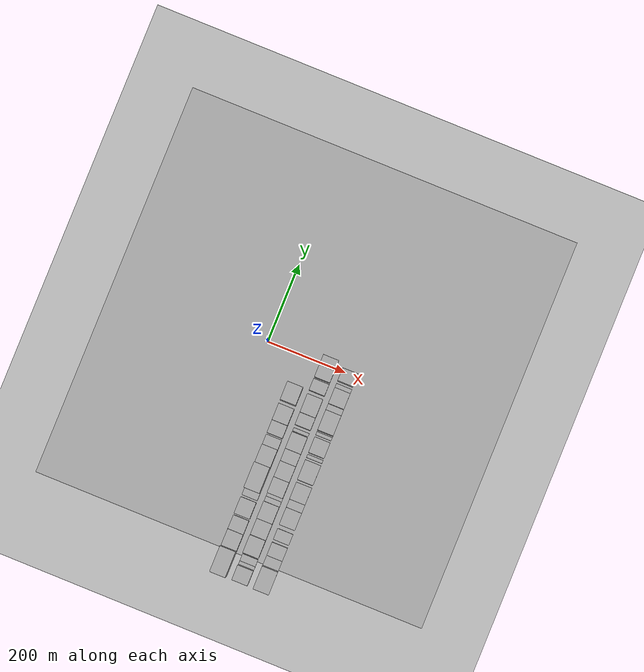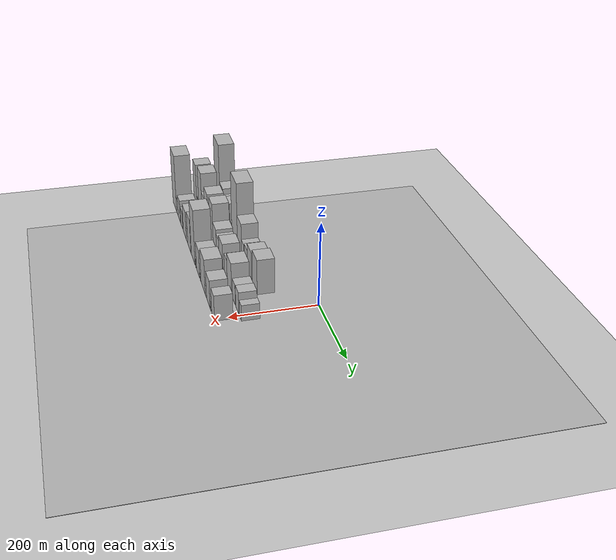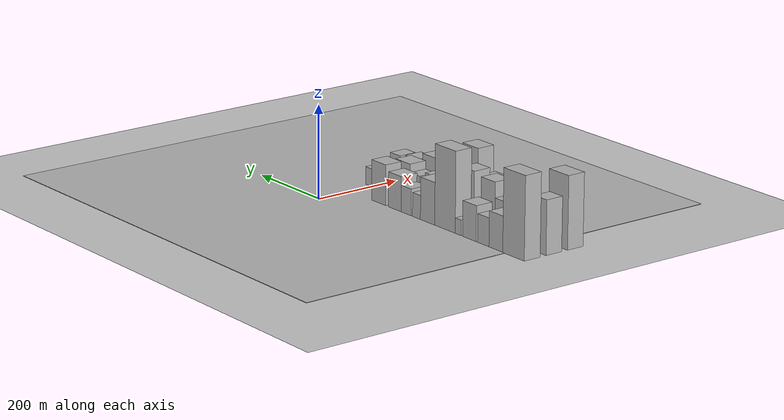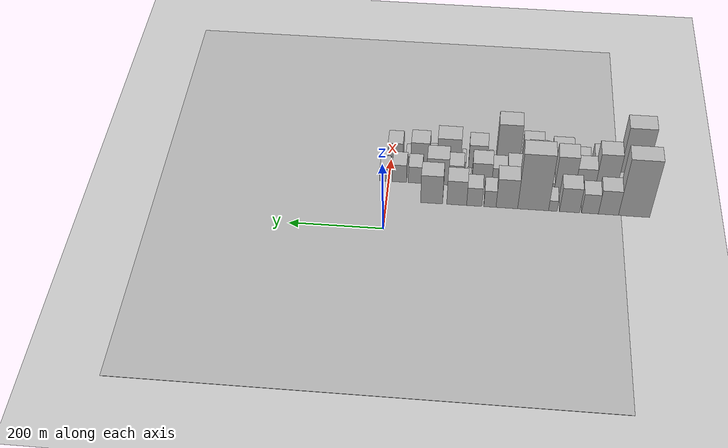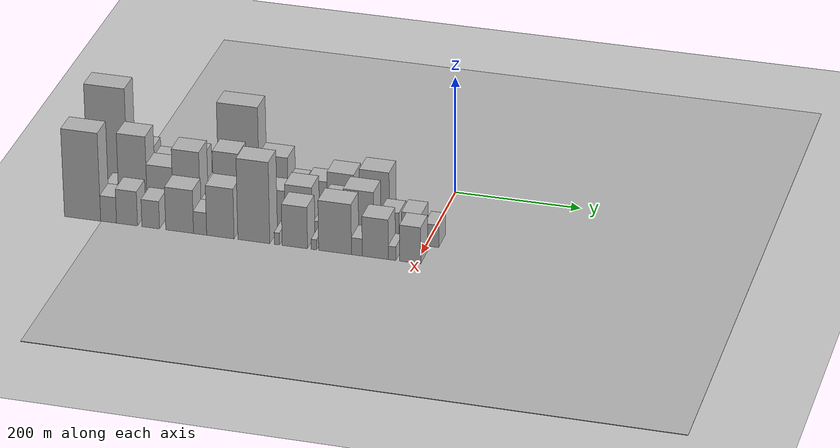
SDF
<sdf version="1.6">
 <world name="default">
  <include><name>ground_plane_1</name><uri>model://HANNAS_ground_plane</uri></include>
  <include>
   <name>ground_plane_2</name>
   <uri>model://HANNAS_ground_plane</uri>
   <pose>100 0 0  0 0 0</pose>
  </include>
  <model name="building_1">
   <static>1</static>
   <pose>100.0000 -527.1341 0 0.000000 0.000000 0.000000</pose>
   <link name="link">
    <pose>0 0 87.00 0 0 0</pose>
    <collision name="collision"><geometry><box><size>40.0000 65.7318 174.0000</size></box></geometry></collision>
    <visual name="visual">
     <cast_shadows>0</cast_shadows>
     <geometry><box><size>40.0000 65.7318 174.0000</size></box></geometry>
     <material>
      <script>
       <uri>model://HANNAS_wall/materials/scripts</uri>
       <uri>model://HANNAS_wall/materials/textures</uri>
       <name>vrc/HANNAS_wall</name>
      </script>
     </material>
    </visual>
   </link>
  </model>
  <model name="building_2">
   <static>1</static>
   <pose>100.0000 -473.0993 0 0.000000 0.000000 0.000000</pose>
   <link name="link">
    <pose>0 0 37.50 0 0 0</pose>
    <collision name="collision"><geometry><box><size>40.0000 42.3379 75.0000</size></box></geometry></collision>
    <visual name="visual">
     <cast_shadows>0</cast_shadows>
     <geometry><box><size>40.0000 42.3379 75.0000</size></box></geometry>
     <material>
      <script>
       <uri>model://HANNAS_wall/materials/scripts</uri>
       <uri>model://HANNAS_wall/materials/textures</uri>
       <name>vrc/HANNAS_wall</name>
      </script>
     </material>
    </visual>
   </link>
  </model>
  <model name="building_3">
   <static>1</static>
   <pose>100.0000 -434.0599 0 0.000000 0.000000 0.000000</pose>
   <link name="link">
    <pose>0 0 30.00 0 0 0</pose>
    <collision name="collision"><geometry><box><size>40.0000 35.7409 60.0000</size></box></geometry></collision>
    <visual name="visual">
     <cast_shadows>0</cast_shadows>
     <geometry><box><size>40.0000 35.7409 60.0000</size></box></geometry>
     <material>
      <script>
       <uri>model://HANNAS_wall/materials/scripts</uri>
       <uri>model://HANNAS_wall/materials/textures</uri>
       <name>vrc/HANNAS_wall</name>
      </script>
     </material>
    </visual>
   </link>
  </model>
  <model name="building_4">
   <static>1</static>
   <pose>100.0000 -390.8342 0 0.000000 0.000000 0.000000</pose>
   <link name="link">
    <pose>0 0 37.50 0 0 0</pose>
    <collision name="collision"><geometry><box><size>40.0000 42.7106 75.0000</size></box></geometry></collision>
    <visual name="visual">
     <cast_shadows>0</cast_shadows>
     <geometry><box><size>40.0000 42.7106 75.0000</size></box></geometry>
     <material>
      <script>
       <uri>model://HANNAS_wall/materials/scripts</uri>
       <uri>model://HANNAS_wall/materials/textures</uri>
       <name>vrc/HANNAS_wall</name>
      </script>
     </material>
    </visual>
   </link>
  </model>
  <model name="building_5">
   <static>1</static>
   <pose>100.0000 -355.3467 0 0.000000 0.000000 0.000000</pose>
   <link name="link">
    <pose>0 0 16.50 0 0 0</pose>
    <collision name="collision"><geometry><box><size>40.0000 18.2644 33.0000</size></box></geometry></collision>
    <visual name="visual">
     <cast_shadows>0</cast_shadows>
     <geometry><box><size>40.0000 18.2644 33.0000</size></box></geometry>
     <material>
      <script>
       <uri>model://HANNAS_wall/materials/scripts</uri>
       <uri>model://HANNAS_wall/materials/textures</uri>
       <name>vrc/HANNAS_wall</name>
      </script>
     </material>
    </visual>
   </link>
  </model>
  <model name="building_6">
   <static>1</static>
   <pose>100.0000 -313.3908 0 0.000000 0.000000 0.000000</pose>
   <link name="link">
    <pose>0 0 85.50 0 0 0</pose>
    <collision name="collision"><geometry><box><size>40.0000 65.6473 171.0000</size></box></geometry></collision>
    <visual name="visual">
     <cast_shadows>0</cast_shadows>
     <geometry><box><size>40.0000 65.6473 171.0000</size></box></geometry>
     <material>
      <script>
       <uri>model://HANNAS_wall/materials/scripts</uri>
       <uri>model://HANNAS_wall/materials/textures</uri>
       <name>vrc/HANNAS_wall</name>
      </script>
     </material>
    </visual>
   </link>
  </model>
  <model name="building_7">
   <static>1</static>
   <pose>100.0000 -257.4847 0 0.000000 0.000000 0.000000</pose>
   <link name="link">
    <pose>0 0 45.00 0 0 0</pose>
    <collision name="collision"><geometry><box><size>40.0000 46.1651 90.0000</size></box></geometry></collision>
    <visual name="visual">
     <cast_shadows>0</cast_shadows>
     <geometry><box><size>40.0000 46.1651 90.0000</size></box></geometry>
     <material>
      <script>
       <uri>model://HANNAS_wall/materials/scripts</uri>
       <uri>model://HANNAS_wall/materials/textures</uri>
       <name>vrc/HANNAS_wall</name>
      </script>
     </material>
    </visual>
   </link>
  </model>
  <model name="building_8">
   <static>1</static>
   <pose>100.0000 -221.3665 0 0.000000 0.000000 0.000000</pose>
   <link name="link">
    <pose>0 0 25.50 0 0 0</pose>
    <collision name="collision"><geometry><box><size>40.0000 26.0713 51.0000</size></box></geometry></collision>
    <visual name="visual">
     <cast_shadows>0</cast_shadows>
     <geometry><box><size>40.0000 26.0713 51.0000</size></box></geometry>
     <material>
      <script>
       <uri>model://HANNAS_wall/materials/scripts</uri>
       <uri>model://HANNAS_wall/materials/textures</uri>
       <name>vrc/HANNAS_wall</name>
      </script>
     </material>
    </visual>
   </link>
  </model>
  <model name="building_9">
   <static>1</static>
   <pose>100.0000 -187.9734 0 0.000000 0.000000 0.000000</pose>
   <link name="link">
    <pose>0 0 28.50 0 0 0</pose>
    <collision name="collision"><geometry><box><size>40.0000 32.7148 57.0000</size></box></geometry></collision>
    <visual name="visual">
     <cast_shadows>0</cast_shadows>
     <geometry><box><size>40.0000 32.7148 57.0000</size></box></geometry>
     <material>
      <script>
       <uri>model://HANNAS_wall/materials/scripts</uri>
       <uri>model://HANNAS_wall/materials/textures</uri>
       <name>vrc/HANNAS_wall</name>
      </script>
     </material>
    </visual>
   </link>
  </model>
  <model name="building_10">
   <static>1</static>
   <pose>100.0000 -150.2736 0 0.000000 0.000000 0.000000</pose>
   <link name="link">
    <pose>0 0 37.50 0 0 0</pose>
    <collision name="collision"><geometry><box><size>40.0000 42.6848 75.0000</size></box></geometry></collision>
    <visual name="visual">
     <cast_shadows>0</cast_shadows>
     <geometry><box><size>40.0000 42.6848 75.0000</size></box></geometry>
     <material>
      <script>
       <uri>model://HANNAS_wall/materials/scripts</uri>
       <uri>model://HANNAS_wall/materials/textures</uri>
       <name>vrc/HANNAS_wall</name>
      </script>
     </material>
    </visual>
   </link>
  </model>
  <model name="building_11">
   <static>1</static>
   <pose>100.0000 -96.4146 0 0.000000 0.000000 0.000000</pose>
   <link name="link">
    <pose>0 0 43.50 0 0 0</pose>
    <collision name="collision"><geometry><box><size>40.0000 47.0333 87.0000</size></box></geometry></collision>
    <visual name="visual">
     <cast_shadows>0</cast_shadows>
     <geometry><box><size>40.0000 47.0333 87.0000</size></box></geometry>
     <material>
      <script>
       <uri>model://HANNAS_wall/materials/scripts</uri>
       <uri>model://HANNAS_wall/materials/textures</uri>
       <name>vrc/HANNAS_wall</name>
      </script>
     </material>
    </visual>
   </link>
  </model>
  <model name="building_28">
   <static>1</static>
   <pose>155.0000 -540.9179 0 0.000000 0.000000 0.000000</pose>
   <link name="link">
    <pose>0 0 57.00 0 0 0</pose>
    <collision name="collision"><geometry><box><size>40.0000 38.1643 114.0000</size></box></geometry></collision>
    <visual name="visual">
     <cast_shadows>0</cast_shadows>
     <geometry><box><size>40.0000 38.1643 114.0000</size></box></geometry>
     <material>
      <script>
       <uri>model://HANNAS_wall/materials/scripts</uri>
       <uri>model://HANNAS_wall/materials/textures</uri>
       <name>vrc/HANNAS_wall</name>
      </script>
     </material>
    </visual>
   </link>
  </model>
  <model name="building_29">
   <static>1</static>
   <pose>155.0000 -517.1502 0 0.000000 0.000000 0.000000</pose>
   <link name="link">
    <pose>0 0 10.50 0 0 0</pose>
    <collision name="collision"><geometry><box><size>40.0000 9.3711 21.0000</size></box></geometry></collision>
    <visual name="visual">
     <cast_shadows>0</cast_shadows>
     <geometry><box><size>40.0000 9.3711 21.0000</size></box></geometry>
     <material>
      <script>
       <uri>model://HANNAS_wall/materials/scripts</uri>
       <uri>model://HANNAS_wall/materials/textures</uri>
       <name>vrc/HANNAS_wall</name>
      </script>
     </material>
    </visual>
   </link>
  </model>
  <model name="building_30">
   <static>1</static>
   <pose>155.0000 -503.4200 0 0.000000 0.000000 0.000000</pose>
   <link name="link">
    <pose>0 0 16.50 0 0 0</pose>
    <collision name="collision"><geometry><box><size>40.0000 18.0893 33.0000</size></box></geometry></collision>
    <visual name="visual">
     <cast_shadows>0</cast_shadows>
     <geometry><box><size>40.0000 18.0893 33.0000</size></box></geometry>
     <material>
      <script>
       <uri>model://HANNAS_wall/materials/scripts</uri>
       <uri>model://HANNAS_wall/materials/textures</uri>
       <name>vrc/HANNAS_wall</name>
      </script>
     </material>
    </visual>
   </link>
  </model>
  <model name="building_31">
   <static>1</static>
   <pose>155.0000 -467.3624 0 0.000000 0.000000 0.000000</pose>
   <link name="link">
    <pose>0 0 63.00 0 0 0</pose>
    <collision name="collision"><geometry><box><size>40.0000 46.0259 126.0000</size></box></geometry></collision>
    <visual name="visual">
     <cast_shadows>0</cast_shadows>
     <geometry><box><size>40.0000 46.0259 126.0000</size></box></geometry>
     <material>
      <script>
       <uri>model://HANNAS_wall/materials/scripts</uri>
       <uri>model://HANNAS_wall/materials/textures</uri>
       <name>vrc/HANNAS_wall</name>
      </script>
     </material>
    </visual>
   </link>
  </model>
  <model name="building_32">
   <static>1</static>
   <pose>155.0000 -423.4653 0 0.000000 0.000000 0.000000</pose>
   <link name="link">
    <pose>0 0 39.00 0 0 0</pose>
    <collision name="collision"><geometry><box><size>40.0000 41.7684 78.0000</size></box></geometry></collision>
    <visual name="visual">
     <cast_shadows>0</cast_shadows>
     <geometry><box><size>40.0000 41.7684 78.0000</size></box></geometry>
     <material>
      <script>
       <uri>model://HANNAS_wall/materials/scripts</uri>
       <uri>model://HANNAS_wall/materials/textures</uri>
       <name>vrc/HANNAS_wall</name>
      </script>
     </material>
    </visual>
   </link>
  </model>
  <model name="building_33">
   <static>1</static>
   <pose>155.0000 -380.6023 0 0.000000 0.000000 0.000000</pose>
   <link name="link">
    <pose>0 0 55.50 0 0 0</pose>
    <collision name="collision"><geometry><box><size>40.0000 43.9575 111.0000</size></box></geometry></collision>
    <visual name="visual">
     <cast_shadows>0</cast_shadows>
     <geometry><box><size>40.0000 43.9575 111.0000</size></box></geometry>
     <material>
      <script>
       <uri>model://HANNAS_wall/materials/scripts</uri>
       <uri>model://HANNAS_wall/materials/textures</uri>
       <name>vrc/HANNAS_wall</name>
      </script>
     </material>
    </visual>
   </link>
  </model>
  <model name="building_34">
   <static>1</static>
   <pose>155.0000 -352.1251 0 0.000000 0.000000 0.000000</pose>
   <link name="link">
    <pose>0 0 13.50 0 0 0</pose>
    <collision name="collision"><geometry><box><size>40.0000 12.9970 27.0000</size></box></geometry></collision>
    <visual name="visual">
     <cast_shadows>0</cast_shadows>
     <geometry><box><size>40.0000 12.9970 27.0000</size></box></geometry>
     <material>
      <script>
       <uri>model://HANNAS_wall/materials/scripts</uri>
       <uri>model://HANNAS_wall/materials/textures</uri>
       <name>vrc/HANNAS_wall</name>
      </script>
     </material>
    </visual>
   </link>
  </model>
  <model name="building_35">
   <static>1</static>
   <pose>155.0000 -341.3082 0 0.000000 0.000000 0.000000</pose>
   <link name="link">
    <pose>0 0 9.00 0 0 0</pose>
    <collision name="collision"><geometry><box><size>40.0000 8.6367 18.0000</size></box></geometry></collision>
    <visual name="visual">
     <cast_shadows>0</cast_shadows>
     <geometry><box><size>40.0000 8.6367 18.0000</size></box></geometry>
     <material>
      <script>
       <uri>model://HANNAS_wall/materials/scripts</uri>
       <uri>model://HANNAS_wall/materials/textures</uri>
       <name>vrc/HANNAS_wall</name>
      </script>
     </material>
    </visual>
   </link>
  </model>
  <model name="building_36">
   <static>1</static>
   <pose>155.0000 -316.5305 0 0.000000 0.000000 0.000000</pose>
   <link name="link">
    <pose>0 0 58.50 0 0 0</pose>
    <collision name="collision"><geometry><box><size>40.0000 40.9187 117.0000</size></box></geometry></collision>
    <visual name="visual">
     <cast_shadows>0</cast_shadows>
     <geometry><box><size>40.0000 40.9187 117.0000</size></box></geometry>
     <material>
      <script>
       <uri>model://HANNAS_wall/materials/scripts</uri>
       <uri>model://HANNAS_wall/materials/textures</uri>
       <name>vrc/HANNAS_wall</name>
      </script>
     </material>
    </visual>
   </link>
  </model>
  <model name="building_37">
   <static>1</static>
   <pose>155.0000 -275.3972 0 0.000000 0.000000 0.000000</pose>
   <link name="link">
    <pose>0 0 36.00 0 0 0</pose>
    <collision name="collision"><geometry><box><size>40.0000 41.3480 72.0000</size></box></geometry></collision>
    <visual name="visual">
     <cast_shadows>0</cast_shadows>
     <geometry><box><size>40.0000 41.3480 72.0000</size></box></geometry>
     <material>
      <script>
       <uri>model://HANNAS_wall/materials/scripts</uri>
       <uri>model://HANNAS_wall/materials/textures</uri>
       <name>vrc/HANNAS_wall</name>
      </script>
     </material>
    </visual>
   </link>
  </model>
  <model name="building_38">
   <static>1</static>
   <pose>155.0000 -238.8787 0 0.000000 0.000000 0.000000</pose>
   <link name="link">
    <pose>0 0 31.50 0 0 0</pose>
    <collision name="collision"><geometry><box><size>40.0000 31.6891 63.0000</size></box></geometry></collision>
    <visual name="visual">
     <cast_shadows>0</cast_shadows>
     <geometry><box><size>40.0000 31.6891 63.0000</size></box></geometry>
     <material>
      <script>
       <uri>model://HANNAS_wall/materials/scripts</uri>
       <uri>model://HANNAS_wall/materials/textures</uri>
       <name>vrc/HANNAS_wall</name>
      </script>
     </material>
    </visual>
   </link>
  </model>
  <model name="building_39">
   <static>1</static>
   <pose>155.0000 -201.5462 0 0.000000 0.000000 0.000000</pose>
   <link name="link">
    <pose>0 0 37.50 0 0 0</pose>
    <collision name="collision"><geometry><box><size>40.0000 42.9759 75.0000</size></box></geometry></collision>
    <visual name="visual">
     <cast_shadows>0</cast_shadows>
     <geometry><box><size>40.0000 42.9759 75.0000</size></box></geometry>
     <material>
      <script>
       <uri>model://HANNAS_wall/materials/scripts</uri>
       <uri>model://HANNAS_wall/materials/textures</uri>
       <name>vrc/HANNAS_wall</name>
      </script>
     </material>
    </visual>
   </link>
  </model>
  <model name="building_40">
   <static>1</static>
   <pose>155.0000 -172.7081 0 0.000000 0.000000 0.000000</pose>
   <link name="link">
    <pose>0 0 9.00 0 0 0</pose>
    <collision name="collision"><geometry><box><size>40.0000 8.7003 18.0000</size></box></geometry></collision>
    <visual name="visual">
     <cast_shadows>0</cast_shadows>
     <geometry><box><size>40.0000 8.7003 18.0000</size></box></geometry>
     <material>
      <script>
       <uri>model://HANNAS_wall/materials/scripts</uri>
       <uri>model://HANNAS_wall/materials/textures</uri>
       <name>vrc/HANNAS_wall</name>
      </script>
     </material>
    </visual>
   </link>
  </model>
  <model name="building_41">
   <static>1</static>
   <pose>155.0000 -145.5700 0 0.000000 0.000000 0.000000</pose>
   <link name="link">
    <pose>0 0 31.50 0 0 0</pose>
    <collision name="collision"><geometry><box><size>40.0000 31.5759 63.0000</size></box></geometry></collision>
    <visual name="visual">
     <cast_shadows>0</cast_shadows>
     <geometry><box><size>40.0000 31.5759 63.0000</size></box></geometry>
     <material>
      <script>
       <uri>model://HANNAS_wall/materials/scripts</uri>
       <uri>model://HANNAS_wall/materials/textures</uri>
       <name>vrc/HANNAS_wall</name>
      </script>
     </material>
    </visual>
   </link>
  </model>
  <model name="building_42">
   <static>1</static>
   <pose>155.0000 -105.9636 0 0.000000 0.000000 0.000000</pose>
   <link name="link">
    <pose>0 0 40.50 0 0 0</pose>
    <collision name="collision"><geometry><box><size>40.0000 47.6367 81.0000</size></box></geometry></collision>
    <visual name="visual">
     <cast_shadows>0</cast_shadows>
     <geometry><box><size>40.0000 47.6367 81.0000</size></box></geometry>
     <material>
      <script>
       <uri>model://HANNAS_wall/materials/scripts</uri>
       <uri>model://HANNAS_wall/materials/textures</uri>
       <name>vrc/HANNAS_wall</name>
      </script>
     </material>
    </visual>
   </link>
  </model>
  <model name="building_43">
   <static>1</static>
   <pose>155.0000 -57.1693 0 0.000000 0.000000 0.000000</pose>
   <link name="link">
    <pose>0 0 25.50 0 0 0</pose>
    <collision name="collision"><geometry><box><size>40.0000 29.9519 51.0000</size></box></geometry></collision>
    <visual name="visual">
     <cast_shadows>0</cast_shadows>
     <geometry><box><size>40.0000 29.9519 51.0000</size></box></geometry>
     <material>
      <script>
       <uri>model://HANNAS_wall/materials/scripts</uri>
       <uri>model://HANNAS_wall/materials/textures</uri>
       <name>vrc/HANNAS_wall</name>
      </script>
     </material>
    </visual>
   </link>
  </model>
  <model name="building_44">
   <static>1</static>
   <pose>155.0000 -22.5484 0 0.000000 0.000000 0.000000</pose>
   <link name="link">
    <pose>0 0 27.00 0 0 0</pose>
    <collision name="collision"><geometry><box><size>40.0000 31.2899 54.0000</size></box></geometry></collision>
    <visual name="visual">
     <cast_shadows>0</cast_shadows>
     <geometry><box><size>40.0000 31.2899 54.0000</size></box></geometry>
     <material>
      <script>
       <uri>model://HANNAS_wall/materials/scripts</uri>
       <uri>model://HANNAS_wall/materials/textures</uri>
       <name>vrc/HANNAS_wall</name>
      </script>
     </material>
    </visual>
   </link>
  </model>
  <model name="building_45">
   <static>1</static>
   <pose>155.0000 9.1401 0 0.000000 0.000000 0.000000</pose>
   <link name="link">
    <pose>0 0 19.50 0 0 0</pose>
    <collision name="collision"><geometry><box><size>40.0000 22.0871 39.0000</size></box></geometry></collision>
    <visual name="visual">
     <cast_shadows>0</cast_shadows>
     <geometry><box><size>40.0000 22.0871 39.0000</size></box></geometry>
     <material>
      <script>
       <uri>model://HANNAS_wall/materials/scripts</uri>
       <uri>model://HANNAS_wall/materials/textures</uri>
       <name>vrc/HANNAS_wall</name>
      </script>
     </material>
    </visual>
   </link>
  </model>
  <model name="building_60">
   <static>1</static>
   <pose>210.0000 -530.7587 0 0.000000 0.000000 0.000000</pose>
   <link name="link">
    <pose>0 0 76.50 0 0 0</pose>
    <collision name="collision"><geometry><box><size>40.0000 58.4827 153.0000</size></box></geometry></collision>
    <visual name="visual">
     <cast_shadows>0</cast_shadows>
     <geometry><box><size>40.0000 58.4827 153.0000</size></box></geometry>
     <material>
      <script>
       <uri>model://HANNAS_wall/materials/scripts</uri>
       <uri>model://HANNAS_wall/materials/textures</uri>
       <name>vrc/HANNAS_wall</name>
      </script>
     </material>
    </visual>
   </link>
  </model>
  <model name="building_61">
   <static>1</static>
   <pose>210.0000 -488.7305 0 0.000000 0.000000 0.000000</pose>
   <link name="link">
    <pose>0 0 22.50 0 0 0</pose>
    <collision name="collision"><geometry><box><size>40.0000 25.5737 45.0000</size></box></geometry></collision>
    <visual name="visual">
     <cast_shadows>0</cast_shadows>
     <geometry><box><size>40.0000 25.5737 45.0000</size></box></geometry>
     <material>
      <script>
       <uri>model://HANNAS_wall/materials/scripts</uri>
       <uri>model://HANNAS_wall/materials/textures</uri>
       <name>vrc/HANNAS_wall</name>
      </script>
     </material>
    </visual>
   </link>
  </model>
  <model name="building_62">
   <static>1</static>
   <pose>210.0000 -459.0025 0 0.000000 0.000000 0.000000</pose>
   <link name="link">
    <pose>0 0 30.00 0 0 0</pose>
    <collision name="collision"><geometry><box><size>40.0000 33.8823 60.0000</size></box></geometry></collision>
    <visual name="visual">
     <cast_shadows>0</cast_shadows>
     <geometry><box><size>40.0000 33.8823 60.0000</size></box></geometry>
     <material>
      <script>
       <uri>model://HANNAS_wall/materials/scripts</uri>
       <uri>model://HANNAS_wall/materials/textures</uri>
       <name>vrc/HANNAS_wall</name>
      </script>
     </material>
    </visual>
   </link>
  </model>
  <model name="building_63">
   <static>1</static>
   <pose>210.0000 -420.9146 0 0.000000 0.000000 0.000000</pose>
   <link name="link">
    <pose>0 0 24.00 0 0 0</pose>
    <collision name="collision"><geometry><box><size>40.0000 28.2934 48.0000</size></box></geometry></collision>
    <visual name="visual">
     <cast_shadows>0</cast_shadows>
     <geometry><box><size>40.0000 28.2934 48.0000</size></box></geometry>
     <material>
      <script>
       <uri>model://HANNAS_wall/materials/scripts</uri>
       <uri>model://HANNAS_wall/materials/textures</uri>
       <name>vrc/HANNAS_wall</name>
      </script>
     </material>
    </visual>
   </link>
  </model>
  <model name="building_64">
   <static>1</static>
   <pose>210.0000 -374.5099 0 0.000000 0.000000 0.000000</pose>
   <link name="link">
    <pose>0 0 37.50 0 0 0</pose>
    <collision name="collision"><geometry><box><size>40.0000 44.5160 75.0000</size></box></geometry></collision>
    <visual name="visual">
     <cast_shadows>0</cast_shadows>
     <geometry><box><size>40.0000 44.5160 75.0000</size></box></geometry>
     <material>
      <script>
       <uri>model://HANNAS_wall/materials/scripts</uri>
       <uri>model://HANNAS_wall/materials/textures</uri>
       <name>vrc/HANNAS_wall</name>
      </script>
     </material>
    </visual>
   </link>
  </model>
  <model name="building_65">
   <static>1</static>
   <pose>210.0000 -341.7908 0 0.000000 0.000000 0.000000</pose>
   <link name="link">
    <pose>0 0 19.50 0 0 0</pose>
    <collision name="collision"><geometry><box><size>40.0000 20.9224 39.0000</size></box></geometry></collision>
    <visual name="visual">
     <cast_shadows>0</cast_shadows>
     <geometry><box><size>40.0000 20.9224 39.0000</size></box></geometry>
     <material>
      <script>
       <uri>model://HANNAS_wall/materials/scripts</uri>
       <uri>model://HANNAS_wall/materials/textures</uri>
       <name>vrc/HANNAS_wall</name>
      </script>
     </material>
    </visual>
   </link>
  </model>
  <model name="building_66">
   <static>1</static>
   <pose>210.0000 -309.4228 0 0.000000 0.000000 0.000000</pose>
   <link name="link">
    <pose>0 0 43.50 0 0 0</pose>
    <collision name="collision"><geometry><box><size>40.0000 43.8136 87.0000</size></box></geometry></collision>
    <visual name="visual">
     <cast_shadows>0</cast_shadows>
     <geometry><box><size>40.0000 43.8136 87.0000</size></box></geometry>
     <material>
      <script>
       <uri>model://HANNAS_wall/materials/scripts</uri>
       <uri>model://HANNAS_wall/materials/textures</uri>
       <name>vrc/HANNAS_wall</name>
      </script>
     </material>
    </visual>
   </link>
  </model>
  <model name="building_67">
   <static>1</static>
   <pose>210.0000 -256.1379 0 0.000000 0.000000 0.000000</pose>
   <link name="link">
    <pose>0 0 70.50 0 0 0</pose>
    <collision name="collision"><geometry><box><size>40.0000 50.7561 141.0000</size></box></geometry></collision>
    <visual name="visual">
     <cast_shadows>0</cast_shadows>
     <geometry><box><size>40.0000 50.7561 141.0000</size></box></geometry>
     <material>
      <script>
       <uri>model://HANNAS_wall/materials/scripts</uri>
       <uri>model://HANNAS_wall/materials/textures</uri>
       <name>vrc/HANNAS_wall</name>
      </script>
     </material>
    </visual>
   </link>
  </model>
  <model name="building_68">
   <static>1</static>
   <pose>210.0000 -219.5408 0 0.000000 0.000000 0.000000</pose>
   <link name="link">
    <pose>0 0 10.50 0 0 0</pose>
    <collision name="collision"><geometry><box><size>40.0000 8.4380 21.0000</size></box></geometry></collision>
    <visual name="visual">
     <cast_shadows>0</cast_shadows>
     <geometry><box><size>40.0000 8.4380 21.0000</size></box></geometry>
     <material>
      <script>
       <uri>model://HANNAS_wall/materials/scripts</uri>
       <uri>model://HANNAS_wall/materials/textures</uri>
       <name>vrc/HANNAS_wall</name>
      </script>
     </material>
    </visual>
   </link>
  </model>
  <model name="building_69">
   <static>1</static>
   <pose>210.0000 -191.2065 0 0.000000 0.000000 0.000000</pose>
   <link name="link">
    <pose>0 0 36.00 0 0 0</pose>
    <collision name="collision"><geometry><box><size>40.0000 40.2306 72.0000</size></box></geometry></collision>
    <visual name="visual">
     <cast_shadows>0</cast_shadows>
     <geometry><box><size>40.0000 40.2306 72.0000</size></box></geometry>
     <material>
      <script>
       <uri>model://HANNAS_wall/materials/scripts</uri>
       <uri>model://HANNAS_wall/materials/textures</uri>
       <name>vrc/HANNAS_wall</name>
      </script>
     </material>
    </visual>
   </link>
  </model>
  <model name="building_70">
   <static>1</static>
   <pose>210.0000 -160.8161 0 0.000000 0.000000 0.000000</pose>
   <link name="link">
    <pose>0 0 9.00 0 0 0</pose>
    <collision name="collision"><geometry><box><size>40.0000 8.5503 18.0000</size></box></geometry></collision>
    <visual name="visual">
     <cast_shadows>0</cast_shadows>
     <geometry><box><size>40.0000 8.5503 18.0000</size></box></geometry>
     <material>
      <script>
       <uri>model://HANNAS_wall/materials/scripts</uri>
       <uri>model://HANNAS_wall/materials/textures</uri>
       <name>vrc/HANNAS_wall</name>
      </script>
     </material>
    </visual>
   </link>
  </model>
  <model name="building_71">
   <static>1</static>
   <pose>210.0000 -127.6550 0 0.000000 0.000000 0.000000</pose>
   <link name="link">
    <pose>0 0 43.50 0 0 0</pose>
    <collision name="collision"><geometry><box><size>40.0000 51.7718 87.0000</size></box></geometry></collision>
    <visual name="visual">
     <cast_shadows>0</cast_shadows>
     <geometry><box><size>40.0000 51.7718 87.0000</size></box></geometry>
     <material>
      <script>
       <uri>model://HANNAS_wall/materials/scripts</uri>
       <uri>model://HANNAS_wall/materials/textures</uri>
       <name>vrc/HANNAS_wall</name>
      </script>
     </material>
    </visual>
   </link>
  </model>
  <model name="building_72">
   <static>1</static>
   <pose>210.0000 -93.3276 0 0.000000 0.000000 0.000000</pose>
   <link name="link">
    <pose>0 0 15.00 0 0 0</pose>
    <collision name="collision"><geometry><box><size>40.0000 16.8830 30.0000</size></box></geometry></collision>
    <visual name="visual">
     <cast_shadows>0</cast_shadows>
     <geometry><box><size>40.0000 16.8830 30.0000</size></box></geometry>
     <material>
      <script>
       <uri>model://HANNAS_wall/materials/scripts</uri>
       <uri>model://HANNAS_wall/materials/textures</uri>
       <name>vrc/HANNAS_wall</name>
      </script>
     </material>
    </visual>
   </link>
  </model>
  <model name="building_73">
   <static>1</static>
   <pose>210.0000 -64.4127 0 0.000000 0.000000 0.000000</pose>
   <link name="link">
    <pose>0 0 34.50 0 0 0</pose>
    <collision name="collision"><geometry><box><size>40.0000 40.9469 69.0000</size></box></geometry></collision>
    <visual name="visual">
     <cast_shadows>0</cast_shadows>
     <geometry><box><size>40.0000 40.9469 69.0000</size></box></geometry>
     <material>
      <script>
       <uri>model://HANNAS_wall/materials/scripts</uri>
       <uri>model://HANNAS_wall/materials/textures</uri>
       <name>vrc/HANNAS_wall</name>
      </script>
     </material>
    </visual>
   </link>
  </model>
  <model name="building_74">
   <static>1</static>
   <pose>210.0000 -37.9666 0 0.000000 0.000000 0.000000</pose>
   <link name="link">
    <pose>0 0 12.00 0 0 0</pose>
    <collision name="collision"><geometry><box><size>40.0000 11.9454 24.0000</size></box></geometry></collision>
    <visual name="visual">
     <cast_shadows>0</cast_shadows>
     <geometry><box><size>40.0000 11.9454 24.0000</size></box></geometry>
     <material>
      <script>
       <uri>model://HANNAS_wall/materials/scripts</uri>
       <uri>model://HANNAS_wall/materials/textures</uri>
       <name>vrc/HANNAS_wall</name>
      </script>
     </material>
    </visual>
   </link>
  </model>
  <model name="building_75">
   <static>1</static>
   <pose>210.0000 -9.5237 0 0.000000 0.000000 0.000000</pose>
   <link name="link">
    <pose>0 0 31.50 0 0 0</pose>
    <collision name="collision"><geometry><box><size>40.0000 32.9403 63.0000</size></box></geometry></collision>
    <visual name="visual">
     <cast_shadows>0</cast_shadows>
     <geometry><box><size>40.0000 32.9403 63.0000</size></box></geometry>
     <material>
      <script>
       <uri>model://HANNAS_wall/materials/scripts</uri>
       <uri>model://HANNAS_wall/materials/textures</uri>
       <name>vrc/HANNAS_wall</name>
      </script>
     </material>
    </visual>
   </link>
  </model>
 </world>
</sdf>
